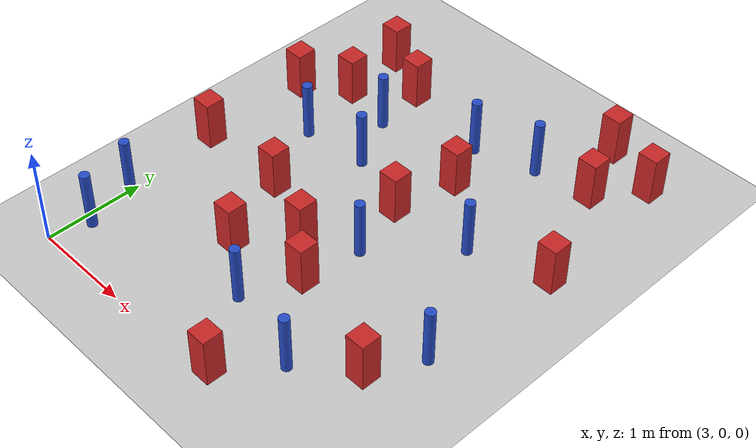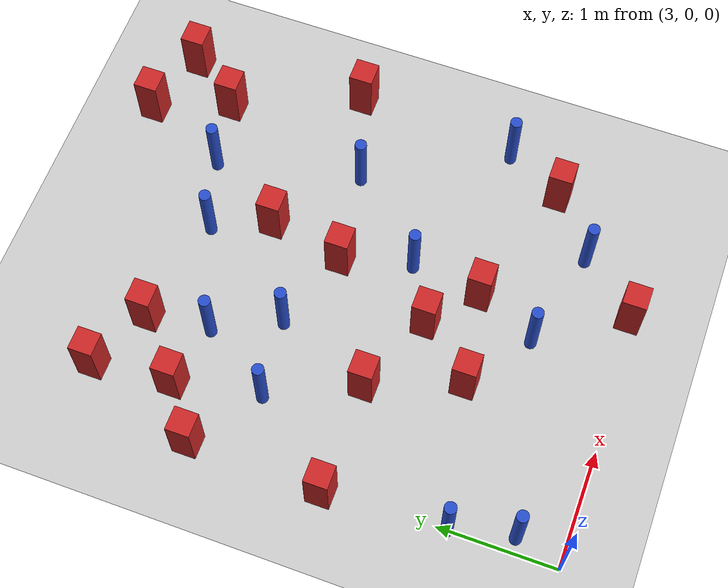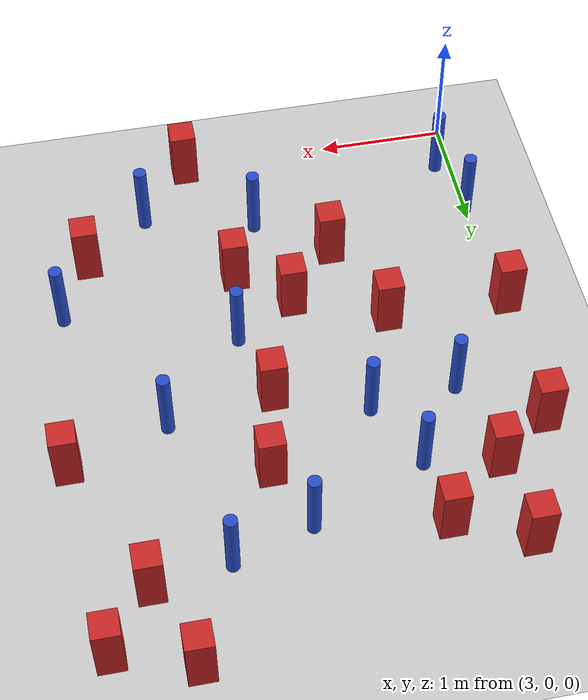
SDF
<sdf version="1.6">
 <world name="default">
  <model name="ground_plane">
   <static>1</static>
   <link name="link">
    <collision name="collision">
     <geometry><plane><normal>0 0 1</normal><size>100 100</size></plane></geometry>
     <surface><friction><ode><mu>100</mu><mu2>50</mu2></ode></friction></surface>
    </collision>
    <visual name="visual">
     <cast_shadows>0</cast_shadows>
     <geometry><plane><normal>0 0 1</normal><size>100 100</size></plane></geometry>
     <material>
      <ambient>1.0 1.0 1.0 1.0</ambient>
      <diffuse>0.8 0.8 0.8 1.0</diffuse>
      <specular>0.01 0.01 0.01 1.000000</specular>
     </material>
    </visual>
   </link>
  </model>
  <model name="square_post_obstacle8">
   <static>true</static>
   <pose>4.57625986904 1.62111247011 1.91545236811e-07 -7.35059704564e-06 1.12565212e-07 2.39332434364e-05</pose>
   <link name="link">
    <pose>0 0 0.25 0 -0 0</pose>
    <inertial>
     <mass>100</mass>
     <inertia>
      <ixx>0.166667</ixx>
      <ixy>0</ixy>
      <ixz>0</ixz>
      <iyy>0.166667</iyy>
      <iyz>0</iyz>
      <izz>0.166667</izz>
     </inertia>
    </inertial>
    <collision name="collision"><geometry><box><size>.2 .2 .5</size></box></geometry></collision>
    <visual name="visual">
     <geometry><box><size>.2 .2 .5</size></box></geometry>
     <material>
      <script><name>Gazebo/Red</name><uri>file://media/materials/scripts/gazebo.material</uri></script>
     </material>
    </visual>
   </link>
  </model>
  <model name="square_post_obstacle23">
   <static>true</static>
   <pose>4.18238607842 1.15388390437 1.91545236811e-07 -7.35059704564e-06 1.12565212e-07 2.39332434364e-05</pose>
   <link name="link">
    <pose>0 0 0.25 0 -0 0</pose>
    <inertial>
     <mass>100</mass>
     <inertia>
      <ixx>0.166667</ixx>
      <ixy>0</ixy>
      <ixz>0</ixz>
      <iyy>0.166667</iyy>
      <iyz>0</iyz>
      <izz>0.166667</izz>
     </inertia>
    </inertial>
    <collision name="collision"><geometry><box><size>.2 .2 .5</size></box></geometry></collision>
    <visual name="visual">
     <geometry><box><size>.2 .2 .5</size></box></geometry>
     <material>
      <script><name>Gazebo/Red</name><uri>file://media/materials/scripts/gazebo.material</uri></script>
     </material>
    </visual>
   </link>
  </model>
  <model name="square_post_obstacle37">
   <static>true</static>
   <pose>2.94550597644 1.91577347089 1.91545236811e-07 -7.35059704564e-06 1.12565212e-07 2.39332434364e-05</pose>
   <link name="link">
    <pose>0 0 0.25 0 -0 0</pose>
    <inertial>
     <mass>100</mass>
     <inertia>
      <ixx>0.166667</ixx>
      <ixy>0</ixy>
      <ixz>0</ixz>
      <iyy>0.166667</iyy>
      <iyz>0</iyz>
      <izz>0.166667</izz>
     </inertia>
    </inertial>
    <collision name="collision"><geometry><box><size>.2 .2 .5</size></box></geometry></collision>
    <visual name="visual">
     <geometry><box><size>.2 .2 .5</size></box></geometry>
     <material>
      <script><name>Gazebo/Red</name><uri>file://media/materials/scripts/gazebo.material</uri></script>
     </material>
    </visual>
   </link>
  </model>
  <model name="square_post_obstacle43">
   <static>true</static>
   <pose>3.32716525385 4.02108744981 1.91545236811e-07 -7.35059704564e-06 1.12565212e-07 2.39332434364e-05</pose>
   <link name="link">
    <pose>0 0 0.25 0 -0 0</pose>
    <inertial>
     <mass>100</mass>
     <inertia>
      <ixx>0.166667</ixx>
      <ixy>0</ixy>
      <ixz>0</ixz>
      <iyy>0.166667</iyy>
      <iyz>0</iyz>
      <izz>0.166667</izz>
     </inertia>
    </inertial>
    <collision name="collision"><geometry><box><size>.2 .2 .5</size></box></geometry></collision>
    <visual name="visual">
     <geometry><box><size>.2 .2 .5</size></box></geometry>
     <material>
      <script><name>Gazebo/Red</name><uri>file://media/materials/scripts/gazebo.material</uri></script>
     </material>
    </visual>
   </link>
  </model>
  <model name="square_post_obstacle77">
   <static>true</static>
   <pose>6.08131051045 0.943509550159 1.91545236811e-07 -7.35059704564e-06 1.12565212e-07 2.39332434364e-05</pose>
   <link name="link">
    <pose>0 0 0.25 0 -0 0</pose>
    <inertial>
     <mass>100</mass>
     <inertia>
      <ixx>0.166667</ixx>
      <ixy>0</ixy>
      <ixz>0</ixz>
      <iyy>0.166667</iyy>
      <iyz>0</iyz>
      <izz>0.166667</izz>
     </inertia>
    </inertial>
    <collision name="collision"><geometry><box><size>.2 .2 .5</size></box></geometry></collision>
    <visual name="visual">
     <geometry><box><size>.2 .2 .5</size></box></geometry>
     <material>
      <script><name>Gazebo/Red</name><uri>file://media/materials/scripts/gazebo.material</uri></script>
     </material>
    </visual>
   </link>
  </model>
  <model name="square_post_obstacle80">
   <static>true</static>
   <pose>5.1858405652 0.0668220412617 1.91545236811e-07 -7.35059704564e-06 1.12565212e-07 2.39332434364e-05</pose>
   <link name="link">
    <pose>0 0 0.25 0 -0 0</pose>
    <inertial>
     <mass>100</mass>
     <inertia>
      <ixx>0.166667</ixx>
      <ixy>0</ixy>
      <ixz>0</ixz>
      <iyy>0.166667</iyy>
      <iyz>0</iyz>
      <izz>0.166667</izz>
     </inertia>
    </inertial>
    <collision name="collision"><geometry><box><size>.2 .2 .5</size></box></geometry></collision>
    <visual name="visual">
     <geometry><box><size>.2 .2 .5</size></box></geometry>
     <material>
      <script><name>Gazebo/Red</name><uri>file://media/materials/scripts/gazebo.material</uri></script>
     </material>
    </visual>
   </link>
  </model>
  <model name="square_post_obstacle84">
   <static>true</static>
   <pose>5.98140574798 3.893725026 1.91545236811e-07 -7.35059704564e-06 1.12565212e-07 2.39332434364e-05</pose>
   <link name="link">
    <pose>0 0 0.25 0 -0 0</pose>
    <inertial>
     <mass>100</mass>
     <inertia>
      <ixx>0.166667</ixx>
      <ixy>0</ixy>
      <ixz>0</ixz>
      <iyy>0.166667</iyy>
      <iyz>0</iyz>
      <izz>0.166667</izz>
     </inertia>
    </inertial>
    <collision name="collision"><geometry><box><size>.2 .2 .5</size></box></geometry></collision>
    <visual name="visual">
     <geometry><box><size>.2 .2 .5</size></box></geometry>
     <material>
      <script><name>Gazebo/Red</name><uri>file://media/materials/scripts/gazebo.material</uri></script>
     </material>
    </visual>
   </link>
  </model>
  <model name="square_post_obstacle86">
   <static>true</static>
   <pose>5.01514037477 3.12262437877 1.91545236811e-07 -7.35059704564e-06 1.12565212e-07 2.39332434364e-05</pose>
   <link name="link">
    <pose>0 0 0.25 0 -0 0</pose>
    <inertial>
     <mass>100</mass>
     <inertia>
      <ixx>0.166667</ixx>
      <ixy>0</ixy>
      <ixz>0</ixz>
      <iyy>0.166667</iyy>
      <iyz>0</iyz>
      <izz>0.166667</izz>
     </inertia>
    </inertial>
    <collision name="collision"><geometry><box><size>.2 .2 .5</size></box></geometry></collision>
    <visual name="visual">
     <geometry><box><size>.2 .2 .5</size></box></geometry>
     <material>
      <script><name>Gazebo/Red</name><uri>file://media/materials/scripts/gazebo.material</uri></script>
     </material>
    </visual>
   </link>
  </model>
  <model name="square_post_obstacle89">
   <static>true</static>
   <pose>6.43509051932 2.82899132361 1.91545236811e-07 -7.35059704564e-06 1.12565212e-07 2.39332434364e-05</pose>
   <link name="link">
    <pose>0 0 0.25 0 -0 0</pose>
    <inertial>
     <mass>100</mass>
     <inertia>
      <ixx>0.166667</ixx>
      <ixy>0</ixy>
      <ixz>0</ixz>
      <iyy>0.166667</iyy>
      <iyz>0</iyz>
      <izz>0.166667</izz>
     </inertia>
    </inertial>
    <collision name="collision"><geometry><box><size>.2 .2 .5</size></box></geometry></collision>
    <visual name="visual">
     <geometry><box><size>.2 .2 .5</size></box></geometry>
     <material>
      <script><name>Gazebo/Red</name><uri>file://media/materials/scripts/gazebo.material</uri></script>
     </material>
    </visual>
   </link>
  </model>
  <model name="square_post_obstacle96">
   <static>true</static>
   <pose>3.88859082214 1.90570112723 1.91545236811e-07 -7.35059704564e-06 1.12565212e-07 2.39332434364e-05</pose>
   <link name="link">
    <pose>0 0 0.25 0 -0 0</pose>
    <inertial>
     <mass>100</mass>
     <inertia>
      <ixx>0.166667</ixx>
      <ixy>0</ixy>
      <ixz>0</ixz>
      <iyy>0.166667</iyy>
      <iyz>0</iyz>
      <izz>0.166667</izz>
     </inertia>
    </inertial>
    <collision name="collision"><geometry><box><size>.2 .2 .5</size></box></geometry></collision>
    <visual name="visual">
     <geometry><box><size>.2 .2 .5</size></box></geometry>
     <material>
      <script><name>Gazebo/Red</name><uri>file://media/materials/scripts/gazebo.material</uri></script>
     </material>
    </visual>
   </link>
  </model>
  <model name="pole_obstacle112">
   <static>true</static>
   <pose>5.58200575427 0.555739816635 7.38925637345e-09 -8.47170692799e-08 1.24976765038e-08 -1.74513093018e-07</pose>
   <link name="link">
    <pose>0 0 0.3 0 -0 0</pose>
    <inertial>
     <mass>1</mass>
     <inertia><ixx>0.145833</ixx><ixy>0</ixy><ixz>0</ixz><iyy>0.145833</iyy><iyz>0</iyz><izz>0.125</izz></inertia>
    </inertial>
    <collision name="collision">
     <geometry><cylinder><radius>0.05</radius><length>.6</length></cylinder></geometry>
    </collision>
    <visual name="visual">
     <geometry><cylinder><radius>0.05</radius><length>.6</length></cylinder></geometry>
     <material>
      <script><name>Gazebo/Blue</name><uri>file://media/materials/scripts/gazebo.material</uri></script>
     </material>
    </visual>
   </link>
  </model>
  <model name="pole_obstacle118">
   <static>true</static>
   <pose>4.19427763919 2.71586037174 7.38925637345e-09 -8.47170692798e-08 1.24976764937e-08 -1.74513093023e-07</pose>
   <link name="link">
    <pose>0 0 0.3 0 -0 0</pose>
    <inertial>
     <mass>1</mass>
     <inertia><ixx>0.145833</ixx><ixy>0</ixy><ixz>0</ixz><iyy>0.145833</iyy><iyz>0</iyz><izz>0.125</izz></inertia>
    </inertial>
    <collision name="collision">
     <geometry><cylinder><radius>0.05</radius><length>.6</length></cylinder></geometry>
    </collision>
    <visual name="visual">
     <geometry><cylinder><radius>0.05</radius><length>.6</length></cylinder></geometry>
     <material>
      <script><name>Gazebo/Blue</name><uri>file://media/materials/scripts/gazebo.material</uri></script>
     </material>
    </visual>
   </link>
  </model>
  <model name="pole_obstacle121">
   <static>true</static>
   <pose>4.80119999925 3.61337971594 7.38925637345e-09 -8.47170692798e-08 1.24976764937e-08 -1.74513093023e-07</pose>
   <link name="link">
    <pose>0 0 0.3 0 -0 0</pose>
    <inertial>
     <mass>1</mass>
     <inertia><ixx>0.145833</ixx><ixy>0</ixy><ixz>0</ixz><iyy>0.145833</iyy><iyz>0</iyz><izz>0.125</izz></inertia>
    </inertial>
    <collision name="collision">
     <geometry><cylinder><radius>0.05</radius><length>.6</length></cylinder></geometry>
    </collision>
    <visual name="visual">
     <geometry><cylinder><radius>0.05</radius><length>.6</length></cylinder></geometry>
     <material>
      <script><name>Gazebo/Blue</name><uri>file://media/materials/scripts/gazebo.material</uri></script>
     </material>
    </visual>
   </link>
  </model>
  <model name="pole_obstacle125">
   <static>true</static>
   <pose>5.04151353593 1.88866399728 7.38925637345e-09 -8.471706928e-08 1.24976765134e-08 -1.74513093015e-07</pose>
   <link name="link">
    <pose>0 0 0.3 0 -0 0</pose>
    <inertial>
     <mass>1</mass>
     <inertia><ixx>0.145833</ixx><ixy>0</ixy><ixz>0</ixz><iyy>0.145833</iyy><iyz>0</iyz><izz>0.125</izz></inertia>
    </inertial>
    <collision name="collision">
     <geometry><cylinder><radius>0.05</radius><length>.6</length></cylinder></geometry>
    </collision>
    <visual name="visual">
     <geometry><cylinder><radius>0.05</radius><length>.6</length></cylinder></geometry>
     <material>
      <script><name>Gazebo/Blue</name><uri>file://media/materials/scripts/gazebo.material</uri></script>
     </material>
    </visual>
   </link>
  </model>
  <model name="square_post_obstacle116">
   <static>true</static>
   <pose>3.86397649243 3.77519367447 1.91545236811e-07 -7.35059704564e-06 1.12565212e-07 2.39332434364e-05</pose>
   <link name="link">
    <pose>0 0 0.25 0 -0 0</pose>
    <inertial>
     <mass>100</mass>
     <inertia>
      <ixx>0.166667</ixx>
      <ixy>0</ixy>
      <ixz>0</ixz>
      <iyy>0.166667</iyy>
      <iyz>0</iyz>
      <izz>0.166667</izz>
     </inertia>
    </inertial>
    <collision name="collision"><geometry><box><size>.2 .2 .5</size></box></geometry></collision>
    <visual name="visual">
     <geometry><box><size>.2 .2 .5</size></box></geometry>
     <material>
      <script><name>Gazebo/Red</name><uri>file://media/materials/scripts/gazebo.material</uri></script>
     </material>
    </visual>
   </link>
  </model>
  <model name="pole_obstacle159">
   <static>true</static>
   <pose>5.40470069466 3.80455957406 7.38925637345e-09 -8.47170692798e-08 1.24976764937e-08 -1.74513093023e-07</pose>
   <link name="link">
    <pose>0 0 0.3 0 -0 0</pose>
    <inertial>
     <mass>1</mass>
     <inertia><ixx>0.145833</ixx><ixy>0</ixy><ixz>0</ixz><iyy>0.145833</iyy><iyz>0</iyz><izz>0.125</izz></inertia>
    </inertial>
    <collision name="collision">
     <geometry><cylinder><radius>0.05</radius><length>.6</length></cylinder></geometry>
    </collision>
    <visual name="visual">
     <geometry><cylinder><radius>0.05</radius><length>.6</length></cylinder></geometry>
     <material>
      <script><name>Gazebo/Blue</name><uri>file://media/materials/scripts/gazebo.material</uri></script>
     </material>
    </visual>
   </link>
  </model>
  <model name="pole_obstacle160">
   <static>true</static>
   <pose>2.99895061726 0.905457821867 7.38925637345e-09 -8.471706928e-08 1.24976765177e-08 -1.74513093012e-07</pose>
   <link name="link">
    <pose>0 0 0.3 0 -0 0</pose>
    <inertial>
     <mass>1</mass>
     <inertia><ixx>0.145833</ixx><ixy>0</ixy><ixz>0</ixz><iyy>0.145833</iyy><iyz>0</iyz><izz>0.125</izz></inertia>
    </inertial>
    <collision name="collision">
     <geometry><cylinder><radius>0.05</radius><length>.6</length></cylinder></geometry>
    </collision>
    <visual name="visual">
     <geometry><cylinder><radius>0.05</radius><length>.6</length></cylinder></geometry>
     <material>
      <script><name>Gazebo/Blue</name><uri>file://media/materials/scripts/gazebo.material</uri></script>
     </material>
    </visual>
   </link>
  </model>
  <model name="pole_obstacle164">
   <static>true</static>
   <pose>5.68261088641 2.58560989011 7.38925637345e-09 -8.47170692798e-08 1.24976764937e-08 -1.74513093023e-07</pose>
   <link name="link">
    <pose>0 0 0.3 0 -0 0</pose>
    <inertial>
     <mass>1</mass>
     <inertia><ixx>0.145833</ixx><ixy>0</ixy><ixz>0</ixz><iyy>0.145833</iyy><iyz>0</iyz><izz>0.125</izz></inertia>
    </inertial>
    <collision name="collision">
     <geometry><cylinder><radius>0.05</radius><length>.6</length></cylinder></geometry>
    </collision>
    <visual name="visual">
     <geometry><cylinder><radius>0.05</radius><length>.6</length></cylinder></geometry>
     <material>
      <script><name>Gazebo/Blue</name><uri>file://media/materials/scripts/gazebo.material</uri></script>
     </material>
    </visual>
   </link>
  </model>
  <model name="pole_obstacle166">
   <static>true</static>
   <pose>3.92668712824 3.2502834093 7.38925637345e-09 -8.47170692798e-08 1.24976764939e-08 -1.74513093025e-07</pose>
   <link name="link">
    <pose>0 0 0.3 0 -0 0</pose>
    <inertial>
     <mass>1</mass>
     <inertia><ixx>0.145833</ixx><ixy>0</ixy><ixz>0</ixz><iyy>0.145833</iyy><iyz>0</iyz><izz>0.125</izz></inertia>
    </inertial>
    <collision name="collision">
     <geometry><cylinder><radius>0.05</radius><length>.6</length></cylinder></geometry>
    </collision>
    <visual name="visual">
     <geometry><cylinder><radius>0.05</radius><length>.6</length></cylinder></geometry>
     <material>
      <script><name>Gazebo/Blue</name><uri>file://media/materials/scripts/gazebo.material</uri></script>
     </material>
    </visual>
   </link>
  </model>
  <model name="square_post_obstacle159">
   <static>true</static>
   <pose>2.97203813109 3.04613225984 1.91545236811e-07 -7.35059704564e-06 1.12565212e-07 2.39332434364e-05</pose>
   <link name="link">
    <pose>0 0 0.25 0 -0 0</pose>
    <inertial>
     <mass>100</mass>
     <inertia>
      <ixx>0.166667</ixx>
      <ixy>0</ixy>
      <ixz>0</ixz>
      <iyy>0.166667</iyy>
      <iyz>0</iyz>
      <izz>0.166667</izz>
     </inertia>
    </inertial>
    <collision name="collision"><geometry><box><size>.2 .2 .5</size></box></geometry></collision>
    <visual name="visual">
     <geometry><box><size>.2 .2 .5</size></box></geometry>
     <material>
      <script><name>Gazebo/Red</name><uri>file://media/materials/scripts/gazebo.material</uri></script>
     </material>
    </visual>
   </link>
  </model>
  <model name="square_post_obstacle168">
   <static>true</static>
   <pose>5.73835127942 4.52943031121 1.91545236811e-07 -7.35059704564e-06 1.12565212e-07 2.39332434364e-05</pose>
   <link name="link">
    <pose>0 0 0.25 0 -0 0</pose>
    <inertial>
     <mass>100</mass>
     <inertia>
      <ixx>0.166667</ixx>
      <ixy>0</ixy>
      <ixz>0</ixz>
      <iyy>0.166667</iyy>
      <iyz>0</iyz>
      <izz>0.166667</izz>
     </inertia>
    </inertial>
    <collision name="collision"><geometry><box><size>.2 .2 .5</size></box></geometry></collision>
    <visual name="visual">
     <geometry><box><size>.2 .2 .5</size></box></geometry>
     <material>
      <script><name>Gazebo/Red</name><uri>file://media/materials/scripts/gazebo.material</uri></script>
     </material>
    </visual>
   </link>
  </model>
  <model name="pole_obstacle181">
   <static>true</static>
   <pose>6.32972952743 1.44191209893 7.38925637345e-09 -8.471706928e-08 1.24976765134e-08 -1.74513093015e-07</pose>
   <link name="link">
    <pose>0 0 0.3 0 -0 0</pose>
    <inertial>
     <mass>1</mass>
     <inertia><ixx>0.145833</ixx><ixy>0</ixy><ixz>0</ixz><iyy>0.145833</iyy><iyz>0</iyz><izz>0.125</izz></inertia>
    </inertial>
    <collision name="collision">
     <geometry><cylinder><radius>0.05</radius><length>.6</length></cylinder></geometry>
    </collision>
    <visual name="visual">
     <geometry><cylinder><radius>0.05</radius><length>.6</length></cylinder></geometry>
     <material>
      <script><name>Gazebo/Blue</name><uri>file://media/materials/scripts/gazebo.material</uri></script>
     </material>
    </visual>
   </link>
  </model>
  <model name="square_post_obstacle183">
   <static>true</static>
   <pose>6.30971255837 4.33963331469 1.91545236811e-07 -7.35059704564e-06 1.12565212e-07 2.39332434364e-05</pose>
   <link name="link">
    <pose>0 0 0.25 0 -0 0</pose>
    <inertial>
     <mass>100</mass>
     <inertia>
      <ixx>0.166667</ixx>
      <ixy>0</ixy>
      <ixz>0</ixz>
      <iyy>0.166667</iyy>
      <iyz>0</iyz>
      <izz>0.166667</izz>
     </inertia>
    </inertial>
    <collision name="collision"><geometry><box><size>.2 .2 .5</size></box></geometry></collision>
    <visual name="visual">
     <geometry><box><size>.2 .2 .5</size></box></geometry>
     <material>
      <script><name>Gazebo/Red</name><uri>file://media/materials/scripts/gazebo.material</uri></script>
     </material>
    </visual>
   </link>
  </model>
  <model name="pole_obstacle188">
   <static>true</static>
   <pose>4.72218621777 0.763344298412 7.38925637345e-09 -8.47170692799e-08 1.24976765038e-08 -1.74513093018e-07</pose>
   <link name="link">
    <pose>0 0 0.3 0 -0 0</pose>
    <inertial>
     <mass>1</mass>
     <inertia><ixx>0.145833</ixx><ixy>0</ixy><ixz>0</ixz><iyy>0.145833</iyy><iyz>0</iyz><izz>0.125</izz></inertia>
    </inertial>
    <collision name="collision">
     <geometry><cylinder><radius>0.05</radius><length>.6</length></cylinder></geometry>
    </collision>
    <visual name="visual">
     <geometry><cylinder><radius>0.05</radius><length>.6</length></cylinder></geometry>
     <material>
      <script><name>Gazebo/Blue</name><uri>file://media/materials/scripts/gazebo.material</uri></script>
     </material>
    </visual>
   </link>
  </model>
  <model name="square_post_obstacle209">
   <static>true</static>
   <pose>4.9668063244 1.2840227589 1.91545236811e-07 -7.35059704564e-06 1.12565212e-07 2.39332434364e-05</pose>
   <link name="link">
    <pose>0 0 0.25 0 -0 0</pose>
    <inertial>
     <mass>100</mass>
     <inertia>
      <ixx>0.166667</ixx>
      <ixy>0</ixy>
      <ixz>0</ixz>
      <iyy>0.166667</iyy>
      <iyz>0</iyz>
      <izz>0.166667</izz>
     </inertia>
    </inertial>
    <collision name="collision"><geometry><box><size>.2 .2 .5</size></box></geometry></collision>
    <visual name="visual">
     <geometry><box><size>.2 .2 .5</size></box></geometry>
     <material>
      <script><name>Gazebo/Red</name><uri>file://media/materials/scripts/gazebo.material</uri></script>
     </material>
    </visual>
   </link>
  </model>
  <model name="pole_obstacle201">
   <static>true</static>
   <pose>3.1193608239 0.388688609929 7.38925637345e-09 -8.471706928e-08 1.24976765172e-08 -1.74513093013e-07</pose>
   <link name="link">
    <pose>0 0 0.3 0 -0 0</pose>
    <inertial>
     <mass>1</mass>
     <inertia><ixx>0.145833</ixx><ixy>0</ixy><ixz>0</ixz><iyy>0.145833</iyy><iyz>0</iyz><izz>0.125</izz></inertia>
    </inertial>
    <collision name="collision">
     <geometry><cylinder><radius>0.05</radius><length>.6</length></cylinder></geometry>
    </collision>
    <visual name="visual">
     <geometry><cylinder><radius>0.05</radius><length>.6</length></cylinder></geometry>
     <material>
      <script><name>Gazebo/Blue</name><uri>file://media/materials/scripts/gazebo.material</uri></script>
     </material>
    </visual>
   </link>
  </model>
  <model name="pole_obstacle215">
   <static>true</static>
   <pose>3.53191455656 2.64000809488 7.38925637345e-09 -8.47170692798e-08 1.24976764939e-08 -1.74513093025e-07</pose>
   <link name="link">
    <pose>0 0 0.3 0 -0 0</pose>
    <inertial>
     <mass>1</mass>
     <inertia><ixx>0.145833</ixx><ixy>0</ixy><ixz>0</ixz><iyy>0.145833</iyy><iyz>0</iyz><izz>0.125</izz></inertia>
    </inertial>
    <collision name="collision">
     <geometry><cylinder><radius>0.05</radius><length>.6</length></cylinder></geometry>
    </collision>
    <visual name="visual">
     <geometry><cylinder><radius>0.05</radius><length>.6</length></cylinder></geometry>
     <material>
      <script><name>Gazebo/Blue</name><uri>file://media/materials/scripts/gazebo.material</uri></script>
     </material>
    </visual>
   </link>
  </model>
  <model name="square_post_obstacle215">
   <static>true</static>
   <pose>4.8837499648 2.47517998808 1.91545236811e-07 -7.35059704564e-06 1.12565212e-07 2.39332434364e-05</pose>
   <link name="link">
    <pose>0 0 0.25 0 -0 0</pose>
    <inertial>
     <mass>100</mass>
     <inertia>
      <ixx>0.166667</ixx>
      <ixy>0</ixy>
      <ixz>0</ixz>
      <iyy>0.166667</iyy>
      <iyz>0</iyz>
      <izz>0.166667</izz>
     </inertia>
    </inertial>
    <collision name="collision"><geometry><box><size>.2 .2 .5</size></box></geometry></collision>
    <visual name="visual">
     <geometry><box><size>.2 .2 .5</size></box></geometry>
     <material>
      <script><name>Gazebo/Red</name><uri>file://media/materials/scripts/gazebo.material</uri></script>
     </material>
    </visual>
   </link>
  </model>
  <model name="square_post_obstacle225">
   <static>true</static>
   <pose>3.3912499648 3.35323998808 1.91545236811e-07 -7.35059704564e-06 1.12565212e-07 2.39332434364e-05</pose>
   <link name="link">
    <pose>0 0 0.25 0 -0 0</pose>
    <inertial>
     <mass>100</mass>
     <inertia>
      <ixx>0.166667</ixx>
      <ixy>0</ixy>
      <ixz>0</ixz>
      <iyy>0.166667</iyy>
      <iyz>0</iyz>
      <izz>0.166667</izz>
     </inertia>
    </inertial>
    <collision name="collision"><geometry><box><size>.2 .2 .5</size></box></geometry></collision>
    <visual name="visual">
     <geometry><box><size>.2 .2 .5</size></box></geometry>
     <material>
      <script><name>Gazebo/Red</name><uri>file://media/materials/scripts/gazebo.material</uri></script>
     </material>
    </visual>
   </link>
  </model>
 </world>
</sdf>
